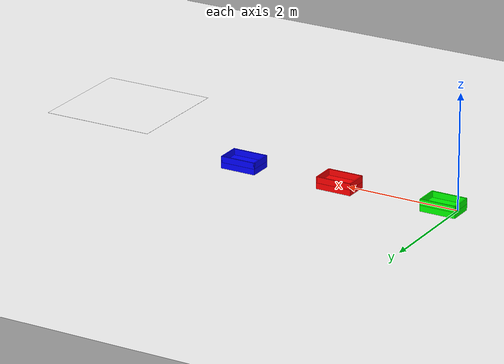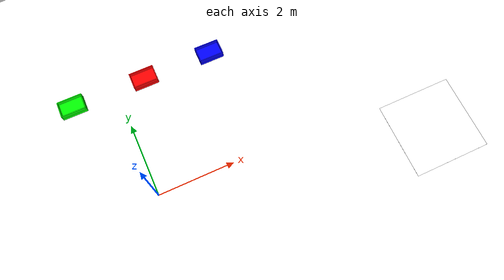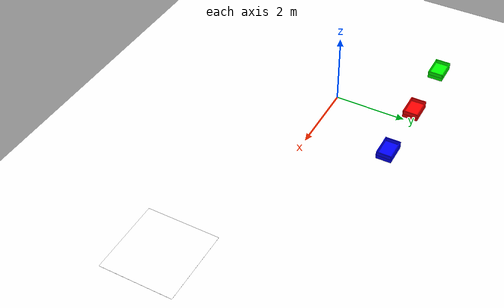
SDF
<sdf version="1.6">
 <world name="library_world">
  <physics type="ode">
   <max_step_size>0.004</max_step_size>
   <real_time_factor>1.0</real_time_factor>
   <real_time_update_rate>250</real_time_update_rate>
  </physics>
  <plugin name="gz::sim::systems::Physics" filename="gz-sim-physics-system"/>
  <plugin name="gz::sim::systems::UserCommands" filename="gz-sim-user-commands-system"/>
  <plugin name="gz::sim::systems::SceneBroadcaster" filename="gz-sim-scene-broadcaster-system"/>
  <plugin name="gz::sim::systems::Contact" filename="gz-sim-contact-system"/>
  <plugin name="gz::sim::systems::Imu" filename="gz-sim-imu-system"/>
  <plugin name="gz::sim::systems::AirPressure" filename="gz-sim-air-pressure-system"/>
  <plugin name="gz::sim::systems::Sensors" filename="gz-sim-sensors-system">
   <render_engine>ogre2</render_engine>
  </plugin>
  <gravity>0 0 -9.8000000000000007</gravity>
  <magnetic_field>5.5644999999999998e-06 2.2875799999999999e-05 -4.2388400000000002e-05</magnetic_field>
  <atmosphere type="adiabatic"/>
  <gravity>0 0 -9.8</gravity>
  <magnetic_field>6e-06 2.3e-05 -4.2e-05</magnetic_field>
  <atmosphere type="adiabatic"/>
  <scene>
   <grid>false</grid>
   <ambient>0.4 0.4 0.4 1</ambient>
   <background>0.7 0.7 0.7 1</background>
   <shadows>true</shadows>
  </scene>
  <model name="ground_plane">
   <static>true</static>
   <link name="link">
    <collision name="collision">
     <geometry><plane><normal>0 0 1</normal><size>100 100</size></plane></geometry>
    </collision>
    <visual name="visual">
     <geometry><plane><normal>0 0 1</normal><size>100 100</size></plane></geometry>
     <material>
      <ambient>1 1 1 1</ambient>
      <diffuse>1 1 1 1</diffuse>
      <specular>0.1 0.1 0.1 1</specular>
      <emissive>0 0 0 1</emissive>
     </material>
    </visual>
    <inertial>
     <mass>1</mass>
     <inertia><ixx>1</ixx><ixy>0</ixy><ixz>0</ixz><iyy>1</iyy><iyz>0</iyz><izz>1</izz></inertia>
    </inertial>
   </link>
  </model>
  <light name="sunUTC" type="directional">
   <pose>0 0 500 0 -0 0</pose>
   <intensity>1</intensity>
   <direction>0.001 0.625 -0.78</direction>
   <diffuse>0.904 0.904 0.904 1</diffuse>
   <specular>0.271 0.271 0.271 1</specular>
   <attenuation><range>2000</range><linear>0</linear><constant>1</constant><quadratic>0</quadratic></attenuation>
   <spot><inner_angle>0</inner_angle><outer_angle>0</outer_angle><falloff>0</falloff></spot>
  </light>
  <model name="book_box_red">
   <static>true</static>
   <pose>0.8 2.5 1.15 0 0 0</pose>
   <link name="link">
    <visual name="bottom">
     <geometry><box><size>0.6 0.4 0.1</size></box></geometry>
     <material><ambient>1 0 0 1</ambient><diffuse>1 0 0 1</diffuse></material>
    </visual>
    <visual name="back">
     <pose>0 -0.19 0.1 0 0 0</pose>
     <geometry><box><size>0.6 0.02 0.1</size></box></geometry>
     <material><ambient>1 0 0 1</ambient><diffuse>1 0 0 1</diffuse></material>
    </visual>
    <visual name="front">
     <pose>0 0.19 0.1 0 0 0</pose>
     <geometry><box><size>0.6 0.02 0.1</size></box></geometry>
     <material><ambient>1 0 0 1</ambient><diffuse>1 0 0 1</diffuse></material>
    </visual>
    <visual name="left">
     <pose>-0.29 0 0.1 0 0 0</pose>
     <geometry><box><size>0.02 0.4 0.1</size></box></geometry>
     <material><ambient>1 0 0 1</ambient><diffuse>1 0 0 1</diffuse></material>
    </visual>
    <visual name="right">
     <pose>0.29 0 0.1 0 0 0</pose>
     <geometry><box><size>0.02 0.4 0.1</size></box></geometry>
     <material><ambient>1 0 0 1</ambient><diffuse>1 0 0 1</diffuse></material>
    </visual>
   </link>
  </model>
  <model name="book_box_green">
   <static>true</static>
   <pose>-1.0 2.5 1.15 0 0 0</pose>
   <link name="link">
    <visual name="bottom">
     <geometry><box><size>0.6 0.4 0.1</size></box></geometry>
     <material><ambient>0 1 0 1</ambient><diffuse>0 1 0 1</diffuse></material>
    </visual>
    <visual name="back">
     <pose>0 -0.19 0.1 0 0 0</pose>
     <geometry><box><size>0.6 0.02 0.1</size></box></geometry>
     <material><ambient>0 1 0 1</ambient><diffuse>0 1 0 1</diffuse></material>
    </visual>
    <visual name="front">
     <pose>0 0.19 0.1 0 0 0</pose>
     <geometry><box><size>0.6 0.02 0.1</size></box></geometry>
     <material><ambient>0 1 0 1</ambient><diffuse>0 1 0 1</diffuse></material>
    </visual>
    <visual name="left">
     <pose>-0.29 0 0.1 0 0 0</pose>
     <geometry><box><size>0.02 0.4 0.1</size></box></geometry>
     <material><ambient>0 1 0 1</ambient><diffuse>0 1 0 1</diffuse></material>
    </visual>
    <visual name="right">
     <pose>0.29 0 0.1 0 0 0</pose>
     <geometry><box><size>0.02 0.4 0.1</size></box></geometry>
     <material><ambient>0 1 0 1</ambient><diffuse>0 1 0 1</diffuse></material>
    </visual>
   </link>
  </model>
  <model name="book_box_blue">
   <static>true</static>
   <pose>2.5 2.5 1.15 0 0 0</pose>
   <link name="link">
    <visual name="bottom">
     <geometry><box><size>0.6 0.4 0.1</size></box></geometry>
     <material><ambient>0 0 1 1</ambient><diffuse>0 0 1 1</diffuse></material>
    </visual>
    <visual name="back">
     <pose>0 -0.19 0.1 0 0 0</pose>
     <geometry><box><size>0.6 0.02 0.1</size></box></geometry>
     <material><ambient>0 0 1 1</ambient><diffuse>0 0 1 1</diffuse></material>
    </visual>
    <visual name="front">
     <pose>0 0.19 0.1 0 0 0</pose>
     <geometry><box><size>0.6 0.02 0.1</size></box></geometry>
     <material><ambient>0 0 1 1</ambient><diffuse>0 0 1 1</diffuse></material>
    </visual>
    <visual name="left">
     <pose>-0.29 0 0.1 0 0 0</pose>
     <geometry><box><size>0.02 0.4 0.1</size></box></geometry>
     <material><ambient>0 0 1 1</ambient><diffuse>0 0 1 1</diffuse></material>
    </visual>
    <visual name="right">
     <pose>0.29 0 0.1 0 0 0</pose>
     <geometry><box><size>0.02 0.4 0.1</size></box></geometry>
     <material><ambient>0 0 1 1</ambient><diffuse>0 0 1 1</diffuse></material>
    </visual>
   </link>
  </model>
  <include><uri>model://etgah_logo</uri><pose>7.0 -1.25 0.06 0 0 -1.57</pose><name>logo</name></include>
 </world>
</sdf>

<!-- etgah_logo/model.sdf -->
<sdf version="1.9">
  <model name="etgah_logo">

    <static>true</static>

    <link name="link">

      <visual name="visual">
        <geometry>
          <plane>
            <normal>0 0 1</normal>
            <size>2.0 2.0</size>
          </plane>
        </geometry>

        <material>
          <ambient>1 1 1 1</ambient>
          <diffuse>1 1 1 1</diffuse>

          <pbr>
            <metal>
              <albedo_map>model://etgah_logo/materials/textures/logo.png</albedo_map>
            </metal>
          </pbr>
        </material>

      </visual>

      <collision name="collision">
        <geometry>
          <plane>
            <normal>0 0 1</normal>
            <size>0.1 0.1</size>
          </plane>
        </geometry>
      </collision>

    </link>
  </model>
</sdf>
